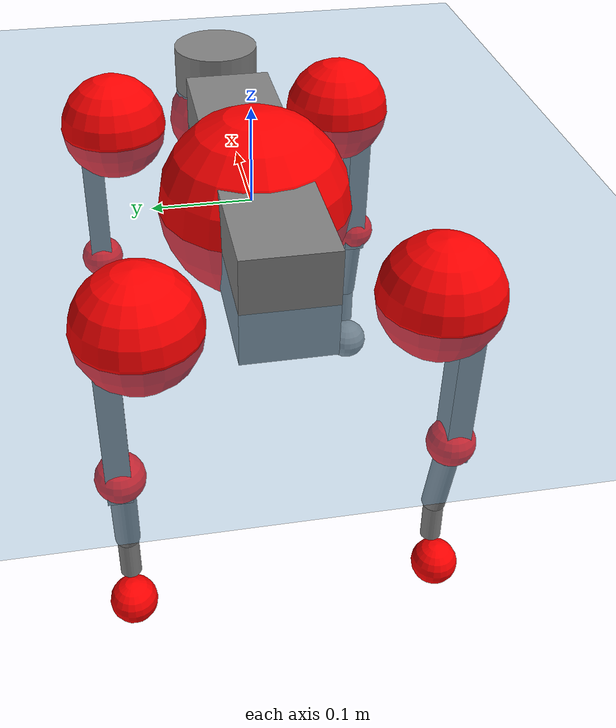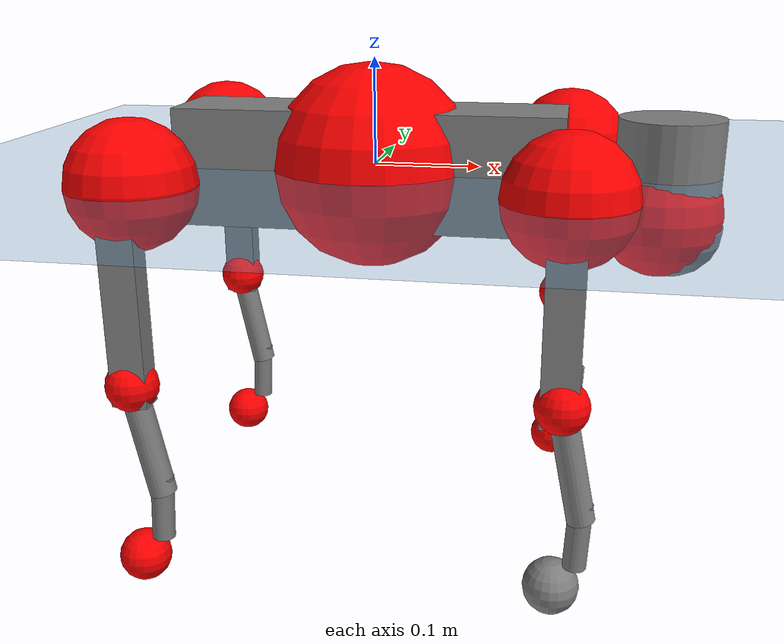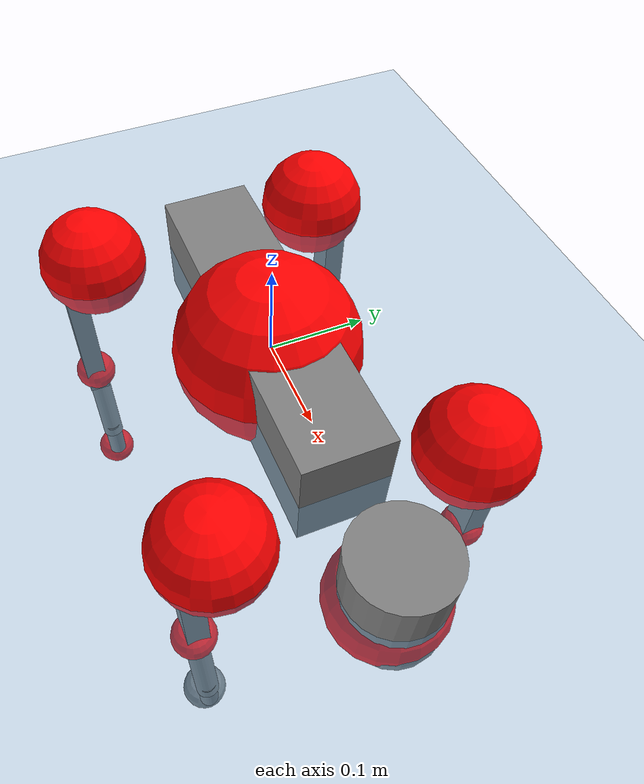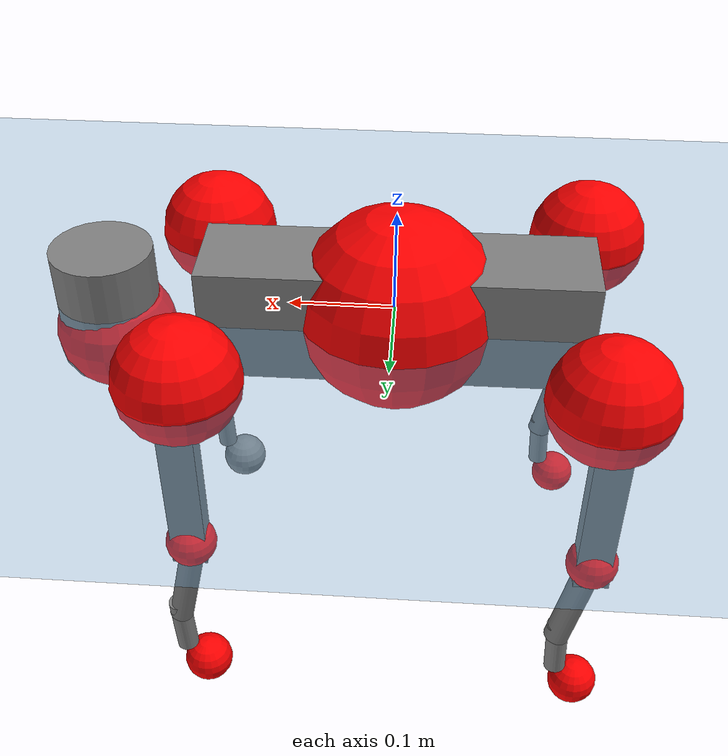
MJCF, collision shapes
<mujoco model="go2">
  <compiler angle="radian" assetdir="assets" balanceinertia="true" inertiafromgeom="false"/>

  <option timestep="0.005" density="1.2" viscosity="2e-05"/>

  <size nkey="1"/>

  <visual>
    <quality shadowsize="8192"/>
    <map shadowclip="0.5"/>
  </visual>

  <default>
    <default class="/">
      <geom contype="0" conaffinity="0" group="1" solref="-1000 -80"/>
      <site size="0.01 0.005 0.005" group="5"/>
      <general forcelimited="true" biastype="affine" gainprm="20" biasprm="0 -20 -0.5"/>
      <default class="go2">
        <joint armature="0.01" damping="0.01" frictionloss="0.2"/>
        <geom condim="1" margin="0.001"/>
        <default class="visual">
          <geom type="mesh" group="2"/>
        </default>
        <default class="collision">
          <geom group="3"/>
          <default class="foot">
            <geom size="0.022 0 0" condim="6" priority="1" friction="0.8 0.02 0.01" solimp="0.015 1 0.022"/>
          </default>
        </default>
        <default class="reward_collision_sphere">
          <geom group="5" rgba="1 0 0 1"/>
        </default>
      </default>
    </default>
  </default>

  <asset>
    <texture type="skybox" colorspace="auto" name="//unnamed_texture_0" builtin="gradient" rgb1="0.95 0.95 0.95" rgb2="0.95 0.95 0.95" width="100" height="600"/>
    <texture type="2d" colorspace="auto" name="texplane" builtin="checker" rgb1="0.345 0.575 0.748" rgb2="0.345 0.575 0.748" markrgb="1 1 1" width="512" height="512"/>
    <material name="MatPlane" class="/" texture="texplane" texuniform="true" texrepeat="2 2" specular="0.9"/>
    <material name="metal" class="/" rgba="0.9 0.95 0.95 1"/>
    <material name="black" class="/" rgba="0 0 0 1"/>
    <material name="white" class="/"/>
    <material name="gray" class="/" rgba="0.671705 0.692426 0.77427 1"/>
    <mesh name="base_0" class="/" file="base_0.obj"/>
    <mesh name="base_1" class="/" file="base_1.obj"/>
    <mesh name="base_2" class="/" file="base_2.obj"/>
    <mesh name="base_3" class="/" file="base_3.obj"/>
    <mesh name="base_4" class="/" file="base_4.obj"/>
    <mesh name="hip_0" class="/" file="hip_0.obj"/>
    <mesh name="hip_1" class="/" file="hip_1.obj"/>
    <mesh name="thigh_0" class="/" file="thigh_0.obj"/>
    <mesh name="thigh_1" class="/" file="thigh_1.obj"/>
    <mesh name="thigh_mirror_0" class="/" file="thigh_mirror_0.obj"/>
    <mesh name="thigh_mirror_1" class="/" file="thigh_mirror_1.obj"/>
    <mesh name="calf_0" class="/" file="calf_0.obj"/>
    <mesh name="calf_1" class="/" file="calf_1.obj"/>
    <mesh name="calf_mirror_0" class="/" file="calf_mirror_0.obj"/>
    <mesh name="calf_mirror_1" class="/" file="calf_mirror_1.obj"/>
    <mesh name="foot" class="/" file="foot.obj"/>
  </asset>

  <worldbody>
    <geom name="floor" class="/" size="100 100 0.125" type="plane" group="0" material="MatPlane"/>
    <light name="toplight_shadow" class="/" pos="0 0 5" dir="0.0990148 0.0990148 -0.990148" type="directional" ambient="0.04 0.04 0.04" diffuse="0.55 0.55 0.55" specular="0.12 0.12 0.12"/>
    <light name="toplight_fill" class="/" pos="0 0 5" dir="0.0990148 0.0990148 -0.990148" type="directional" castshadow="false" ambient="0.04 0.04 0.04" diffuse="0.3 0.3 0.3" specular="0.08 0.08 0.08"/>
    <body name="trunk" childclass="go2" pos="-0.00238697 -0.00266238 -0.000759951" quat="0.999999 5.63805e-05 0.000704193 0.00121962">
      <inertial pos="0.0182389 0.000413335 -0.00490611" quat="-0.00208295 0.714043 -0.00462823 0.700084" mass="6.32402" diaginertia="0.0924828 0.175237 0.00937831"/>
      <joint name="//unnamed_joint_0" type="free" armature="0" damping="0" frictionloss="0"/>
      <geom name="//unnamed_geom_1" class="visual" material="black" mesh="base_0"/>
      <geom name="//unnamed_geom_2" class="visual" material="black" mesh="base_1"/>
      <geom name="//unnamed_geom_3" class="visual" material="black" mesh="base_2"/>
      <geom name="//unnamed_geom_4" class="visual" material="white" mesh="base_3"/>
      <geom name="//unnamed_geom_5" class="visual" material="gray" mesh="base_4"/>
      <geom name="trunk_1" class="collision" size="0.183052 0.0454954 0.0554703" type="box"/>
      <geom name="trunk_2" class="collision" size="0.0486581 0.0437923" pos="0.276987 0 0.00821187" type="cylinder"/>
      <geom name="trunk_3" class="collision" size="0.0457387" pos="0.284762 0 -0.0492712"/>
      <geom name="//unnamed_geom_9" class="reward_collision_sphere" size="0.0973163"/>
      <geom name="//unnamed_geom_10" class="reward_collision_sphere" size="0.0583898" pos="0.272127 0 -0.0369534"/>
      <site name="imu" pos="-0.0229785 0.00250144 0.0365508" size="0.00973163"/>
      <camera name="track" pos="0 -2.25284 0" quat="0.707107 0.707107 0 0" mode="trackcom"/>
      <camera name="ego_camera" pos="0.303227 0 0.0369534" quat="-0.5 -0.5 0.5 0.5"/>
      <body name="FL_hip" pos="0.185336 0.0502306 0.00321594" quat="0.999999 -0.000925844 -0.000237981 0.00053947">
        <inertial pos="-0.00737118 0.000781098 -0.00208789" quat="0.496734 0.499044 0.506134 0.498036" mass="0.654724" diaginertia="0.000803467 0.00108221 0.000189937"/>
        <joint name="FL_hip_joint" pos="0 0 0" axis="0.999974 -0.00637137 0.00333735" range="-1.042 0.993119" armature="0.0110984" damping="0" frictionloss="0.20482"/>
        <geom name="//unnamed_geom_11" class="visual" material="metal" mesh="hip_0"/>
        <geom name="//unnamed_geom_12" class="visual" material="gray" mesh="hip_1"/>
        <geom name="//unnamed_geom_13" class="collision" size="0.0447655 0.0194633" pos="0 0.0901135 0" quat="0.707107 0.707107 0 0" type="cylinder"/>
        <geom name="//unnamed_geom_14" class="reward_collision_sphere" size="0.0583898" pos="0 0.0788493 0"/>
        <body name="FL_thigh" pos="-0.000811834 0.107174 0.0030583" quat="1 1.07026e-05 1.56983e-05 1.45218e-05">
          <inertial pos="-0.00130133 -0.0259257 -0.0241404" quat="0.830727 0.0843597 -0.0202808 0.549877" mass="1.07206" diaginertia="0.00522156 0.0105692 0.000326256"/>
          <joint name="FL_thigh_joint" pos="0 0 0" axis="-0.0115293 0.999915 0.00608407" stiffness="0.00820636" range="-1.62389 3.5475" armature="0.0111387" damping="0" frictionloss="0.21038"/>
          <geom name="//unnamed_geom_15" class="visual" material="metal" mesh="thigh_0"/>
          <geom name="//unnamed_geom_16" class="visual" material="gray" mesh="thigh_1"/>
          <geom name="//unnamed_geom_17" class="collision" size="0.103642 0.0119212 0.0165438" pos="0 0 -0.0874564" quat="0.707107 0 0.707107 0" type="box"/>
          <body name="FL_calf" pos="-0.000248671 -0.000717309 -0.174778" quat="0.999999 -0.000434477 -4.8748e-05 -0.00108654">
            <inertial pos="0.00831929 0.00144474 -0.11871" quat="0.707977 0.0127213 -0.0114144 0.706028" mass="0.221247" diaginertia="0.00128732 0.00270567 1.91762e-05"/>
            <joint name="FL_calf_joint" pos="0 0 0" axis="0.000180046 1 0.000551016" stiffness="0.000270294" range="-2.70287 -0.893474" armature="0.0086727" damping="0.00424868" frictionloss="0.205085"/>
            <geom name="//unnamed_geom_18" class="visual" material="gray" mesh="calf_0"/>
            <geom name="//unnamed_geom_19" class="visual" material="black" mesh="calf_1"/>
            <geom name="FL_calf0" class="collision" size="0.011678 0.0583898" pos="0.00777506 0 -0.0492712" quat="0.994493 0 -0.104807 0" type="cylinder"/>
            <geom name="//unnamed_geom_21" class="collision" size="0.0107048 0.0316278" pos="0.0194377 0 -0.121536" quat="0.999688 0 0.0249974 0" type="cylinder"/>
            <geom name="//unnamed_geom_22" class="visual" pos="0 0 -0.174913" quat="1 0 0 0" material="black" mesh="foot"/>
            <geom name="FL_foot" class="foot" size="0.0183685" pos="-0.00194377 0 -0.174913"/>
            <geom name="//unnamed_geom_24" class="reward_collision_sphere" size="0.0243291"/>
            <geom name="//unnamed_geom_25" class="reward_collision_sphere" size="0.0243291" pos="-0.00194377 0 -0.174913"/>
            <site name="FL_foot" class="foot" pos="-0.00194377 0 -0.174913" size="0.00973163"/>
          </body>
        </body>
      </body>
      <body name="FR_hip" pos="0.189234 -0.0497243 0.0010189" quat="1 -0.000125115 -0.000121053 -0.000233279">
        <inertial pos="-0.00232252 -0.00261642 -4.01313e-05" quat="0.49821 0.505463 0.499241 0.497044" mass="0.658303" diaginertia="0.000802504 0.0011281 0.000179567"/>
        <joint name="FR_hip_joint" pos="0 0 0" axis="0.999999 -0.00144144 -0.0008029" range="-1.00712 1.04791" armature="0.00869296" damping="0.012165" frictionloss="0.217365"/>
        <geom name="//unnamed_geom_26" class="visual" pos="0 2.65906e-09 1.14052e-07" quat="4.63268e-05 1 0 0" material="metal" mesh="hip_0"/>
        <geom name="//unnamed_geom_27" class="visual" pos="0 4.31065e-09 -2.82095e-07" quat="4.63268e-05 1 0 0" material="gray" mesh="hip_1"/>
        <geom name="//unnamed_geom_28" class="collision" size="0.0447655 0.0194633" pos="0 -0.0901135 0" quat="0.707107 0.707107 0 0" type="cylinder"/>
        <geom name="//unnamed_geom_29" class="reward_collision_sphere" size="0.0583898" pos="0 -0.0788493 0"/>
        <body name="FR_thigh" pos="0.000465635 -0.106691 0.00304863" quat="0.999999 -0.000291883 -0.00130731 0.000200162">
          <inertial pos="-0.00618259 0.0230546 -0.0265663" quat="0.55021 -0.0214668 0.0800784 0.8309" mass="1.02862" diaginertia="0.00515262 0.0103754 0.000314662"/>
          <joint name="FR_thigh_joint" pos="0 0 0" axis="-0.000143871 -0.999977 -0.00671266" stiffness="0.00329023" range="-3.48804 1.55277" armature="0.00978253" damping="0.0186371" frictionloss="0.20538"/>
          <geom name="//unnamed_geom_30" class="visual" material="metal" mesh="thigh_mirror_0"/>
          <geom name="//unnamed_geom_31" class="visual" material="gray" mesh="thigh_mirror_1"/>
          <geom name="//unnamed_geom_32" class="collision" size="0.103642 0.0119212 0.0165438" pos="0 0 -0.0874564" quat="0.707107 0 0.707107 0" type="box"/>
          <body name="FR_calf" pos="0.00232338 -0.00193999 -0.173362" quat="1 -8.13519e-05 8.40286e-05 -4.25789e-05">
            <inertial pos="0.00795489 0.00119268 -0.116219" quat="0.705575 -0.00110379 0.0043677 0.708621" mass="0.229063" diaginertia="0.00138412 0.00265403 2.05486e-05"/>
            <joint name="FR_calf_joint" pos="0 0 0" axis="-0.00922692 -0.999953 0.00313824" range="0.833005 2.7307" armature="0.00959854" damping="0.0200928" frictionloss="0.189166"/>
            <geom name="//unnamed_geom_33" class="visual" material="gray" mesh="calf_mirror_0"/>
            <geom name="//unnamed_geom_34" class="visual" material="black" mesh="calf_mirror_1"/>
            <geom name="FR_calf0" class="collision" size="0.0126511 0.0583898" pos="0.00971883 0 -0.0492712" quat="0.995004 0 -0.0998334 0" type="cylinder"/>
            <geom name="//unnamed_geom_36" class="collision" size="0.0107048 0.0316278" pos="0.0194377 0 -0.121536" quat="0.999688 0 0.0249974 0" type="cylinder"/>
            <geom name="//unnamed_geom_37" class="visual" pos="0 0 -0.174913" quat="1 0 0 0" material="black" mesh="foot"/>
            <geom name="FR_foot" class="foot" size="0.0254379" pos="-0.00194377 0 -0.174913"/>
            <geom name="//unnamed_geom_39" class="reward_collision_sphere" size="0.0243291"/>
            <geom name="//unnamed_geom_40" class="reward_collision_sphere" size="0.0243291" pos="-0.00194377 0 -0.174913"/>
            <site name="FR_foot" class="foot" pos="-0.00194377 0 -0.174913" size="0.00973163"/>
          </body>
        </body>
      </body>
      <body name="RL_hip" pos="-0.18869 0.0530499 0.00255681" quat="1 -0.000711677 2.63525e-05 0.000352811">
        <inertial pos="0.00792933 0.00351005 -0.00113945" quat="0.504899 0.498526 0.49699 0.499549" mass="0.618352" diaginertia="0.000764385 0.00111695 0.000180194"/>
        <joint name="RL_hip_joint" pos="0 0 0" axis="-0.999826 0.00486663 0.0180233" stiffness="0.0110116" range="-1.02443 1.02439" armature="0.00978569" damping="0.00931472" frictionloss="0.201135"/>
        <geom name="//unnamed_geom_41" class="visual" pos="-1.3128e-09 0 -2.57338e-07" quat="4.63268e-05 0 1 0" material="metal" mesh="hip_0"/>
        <geom name="//unnamed_geom_42" class="visual" pos="-2.1282e-09 0 -2.28222e-07" quat="4.63268e-05 0 1 0" material="gray" mesh="hip_1"/>
        <geom name="//unnamed_geom_43" class="collision" size="0.0447655 0.0194633" pos="0 0.0901135 0" quat="0.707107 0.707107 0 0" type="cylinder"/>
        <geom name="//unnamed_geom_44" class="reward_collision_sphere" size="0.0583898" pos="0 0.0788493 0"/>
        <body name="RL_thigh" pos="-0.002093 0.10877 0.00255999" quat="0.999999 -0.000996603 0.000315577 0.000525447">
          <inertial pos="-0.00392166 -0.0238026 -0.0258834" quat="0.835407 0.0753449 -0.0226583 0.543971" mass="1.02451" diaginertia="0.00514295 0.0102213 0.000329033"/>
          <joint name="RL_thigh_joint" pos="0 0 0" axis="-0.00862375 0.999874 0.0132991" range="-0.501923 4.54803" armature="0.0086092" damping="0" frictionloss="0.191"/>
          <geom name="//unnamed_geom_45" class="visual" material="metal" mesh="thigh_0"/>
          <geom name="//unnamed_geom_46" class="visual" material="gray" mesh="thigh_1"/>
          <geom name="//unnamed_geom_47" class="collision" size="0.103642 0.0119212 0.0165438" pos="0 0 -0.0874564" quat="0.707107 0 0.707107 0" type="box"/>
          <body name="RL_calf" pos="-0.000157406 -0.00209711 -0.172755" quat="1 0.000153778 -0.000187374 0.000116688">
            <inertial pos="0.0060388 -0.00065245 -0.113991" quat="0.710815 0.00238661 -0.00583066 0.703351" mass="0.221849" diaginertia="0.00129673 0.00267203 1.99779e-05"/>
            <joint name="RL_calf_joint" pos="0 0 0" axis="-0.00073986 0.999991 -0.00416485" range="-2.7144 -0.834473" armature="0.00923359" damping="0" frictionloss="0.190776"/>
            <geom name="//unnamed_geom_48" class="visual" material="gray" mesh="calf_0"/>
            <geom name="//unnamed_geom_49" class="visual" material="black" mesh="calf_1"/>
            <geom name="RL_calf0" class="collision" size="0.0126511 0.0583898" pos="0.00971883 0 -0.0492712" quat="0.995004 0 -0.0998334 0" type="cylinder"/>
            <geom name="//unnamed_geom_51" class="collision" size="0.0107048 0.0316278" pos="0.0194377 0 -0.121536" quat="0.999688 0 0.0249974 0" type="cylinder"/>
            <geom name="//unnamed_geom_52" class="visual" pos="0 0 -0.174913" quat="1 0 0 0" material="black" mesh="foot"/>
            <geom name="RL_foot" class="foot" size="0.0214891" pos="-0.00194377 0 -0.174913"/>
            <geom name="//unnamed_geom_54" class="reward_collision_sphere" size="0.0243291"/>
            <geom name="//unnamed_geom_55" class="reward_collision_sphere" size="0.0243291" pos="-0.00194377 0 -0.174913"/>
            <site name="RL_foot" class="foot" pos="-0.00194377 0 -0.174913" size="0.00973163"/>
          </body>
        </body>
      </body>
      <body name="RR_hip" pos="-0.187285 -0.0541571 0.00149714" quat="0.999999 -0.000967093 0.000185142 0.00106551">
        <inertial pos="0.00554014 0.000736777 -0.000600884" quat="0.500275 0.490199 0.50854 0.500816" mass="0.622244" diaginertia="0.000782082 0.00110616 0.000176197"/>
        <joint name="RR_hip_joint" pos="0 0 0" axis="-0.99997 0.00358315 0.0068356" stiffness="0.00798883" range="-1.06829 1.04541" armature="0.0110465" damping="0.0169404" frictionloss="0.167755"/>
        <geom name="//unnamed_geom_56" class="visual" pos="1.31815e-09 2.65906e-09 -3.71391e-07" quat="2.14617e-09 4.63268e-05 4.63268e-05 -1" material="metal" mesh="hip_0"/>
        <geom name="//unnamed_geom_57" class="visual" pos="2.11497e-09 4.31065e-09 5.38728e-08" quat="2.14617e-09 4.63268e-05 4.63268e-05 -1" material="gray" mesh="hip_1"/>
        <geom name="//unnamed_geom_58" class="collision" size="0.0447655 0.0194633" pos="0 -0.0901135 0" quat="0.707107 0.707107 0 0" type="cylinder"/>
        <geom name="//unnamed_geom_59" class="reward_collision_sphere" size="0.0583898" pos="0 -0.0788493 0"/>
        <body name="RR_thigh" pos="-0.00151729 -0.108703 -0.00288924" quat="1 -0.000491204 -0.000407286 -0.000691691">
          <inertial pos="-0.00321417 0.0236951 -0.0269156" quat="0.55146 -0.0202579 0.0844576 0.829668" mass="1.03383" diaginertia="0.0050581 0.0104833 0.000314975"/>
          <joint name="RR_thigh_joint" pos="0 0 0" axis="-0.00337144 -0.999992 -0.00196302" range="-4.58992 0.571464" armature="0.0106607" damping="0.0162957" frictionloss="0.19862"/>
          <geom name="//unnamed_geom_60" class="visual" material="metal" mesh="thigh_mirror_0"/>
          <geom name="//unnamed_geom_61" class="visual" material="gray" mesh="thigh_mirror_1"/>
          <geom name="//unnamed_geom_62" class="collision" size="0.103642 0.0119212 0.0165438" pos="0 0 -0.0874564" quat="0.707107 0 0.707107 0" type="box"/>
          <body name="RR_calf" pos="-0.00183059 0.00197735 -0.174331" quat="1 2.89586e-05 -0.000473833 -0.000560787">
            <inertial pos="0.0078633 0.000612902 -0.114385" quat="0.705297 -0.00724308 0.00215426 0.708872" mass="0.221737" diaginertia="0.00128659 0.00249085 1.98966e-05"/>
            <joint name="RR_calf_joint" pos="0 0 0" axis="-0.0018042 -0.999943 0.0105381" range="0.892501 2.75988" armature="0.0082298" damping="0.00939525" frictionloss="0.190976"/>
            <geom name="//unnamed_geom_63" class="visual" material="gray" mesh="calf_mirror_0"/>
            <geom name="//unnamed_geom_64" class="visual" material="black" mesh="calf_mirror_1"/>
            <geom name="RR_calf0" class="collision" size="0.0126511 0.0583898" pos="0.00971883 0 -0.0492712" quat="0.995004 0 -0.0998334 0" type="cylinder"/>
            <geom name="//unnamed_geom_66" class="collision" size="0.0107048 0.0316278" pos="0.0194377 0 -0.121536" quat="0.999688 0 0.0249974 0" type="cylinder"/>
            <geom name="//unnamed_geom_67" class="visual" pos="0 0 -0.174913" quat="1 0 0 0" material="black" mesh="foot"/>
            <geom name="RR_foot" class="foot" size="0.023201" pos="-0.00194377 0 -0.174913"/>
            <geom name="//unnamed_geom_69" class="reward_collision_sphere" size="0.0243291"/>
            <geom name="//unnamed_geom_70" class="reward_collision_sphere" size="0.0243291" pos="-0.00194377 0 -0.174913"/>
            <site name="RR_foot" class="foot" pos="-0.00194377 0 -0.174913" size="0.00973163"/>
          </body>
        </body>
      </body>
    </body>
  </worldbody>

  <contact>
    <pair class="/" geom1="floor" geom2="FL_foot" name="//unnamed_contact_0"/>
    <pair class="/" geom1="floor" geom2="FR_foot" name="//unnamed_contact_1"/>
    <pair class="/" geom1="floor" geom2="RL_foot" name="//unnamed_contact_2"/>
    <pair class="/" geom1="floor" geom2="RR_foot" name="//unnamed_contact_3"/>
  </contact>

  <actuator>
    <general name="FL_hip" class="/" joint="FL_hip_joint" forcerange="-23.457 23.457" gainprm="19.6241" biasprm="0 -19.6241 -0.489911"/>
    <general name="FL_thigh" class="/" joint="FL_thigh_joint" forcerange="-21.5451 21.5451" gainprm="19.6241" biasprm="0 -19.6241 -0.489911"/>
    <general name="FL_calf" class="/" joint="FL_calf_joint" forcerange="-43.4881 43.4881" gainprm="19.6241" biasprm="0 -19.6241 -0.489911"/>
    <general name="FR_hip" class="/" joint="FR_hip_joint" forcerange="-24.7434 24.7434" gainprm="19.6241" biasprm="0 -19.6241 -0.489911"/>
    <general name="FR_thigh" class="/" joint="FR_thigh_joint" forcerange="-23.2726 23.2726" gainprm="19.6241" biasprm="0 -19.6241 -0.489911"/>
    <general name="FR_calf" class="/" joint="FR_calf_joint" forcerange="-39.3323 39.3323" gainprm="19.6241" biasprm="0 -19.6241 -0.489911"/>
    <general name="RL_hip" class="/" joint="RL_hip_joint" forcerange="-23.8448 23.8448" gainprm="19.6241" biasprm="0 -19.6241 -0.489911"/>
    <general name="RL_thigh" class="/" joint="RL_thigh_joint" forcerange="-23.8001 23.8001" gainprm="19.6241" biasprm="0 -19.6241 -0.489911"/>
    <general name="RL_calf" class="/" joint="RL_calf_joint" forcerange="-42.2729 42.2729" gainprm="19.6241" biasprm="0 -19.6241 -0.489911"/>
    <general name="RR_hip" class="/" joint="RR_hip_joint" forcerange="-22.1894 22.1894" gainprm="19.6241" biasprm="0 -19.6241 -0.489911"/>
    <general name="RR_thigh" class="/" joint="RR_thigh_joint" forcerange="-23.0894 23.0894" gainprm="19.6241" biasprm="0 -19.6241 -0.489911"/>
    <general name="RR_calf" class="/" joint="RR_calf_joint" forcerange="-48.5927 48.5927" gainprm="19.6241" biasprm="0 -19.6241 -0.489911"/>
  </actuator>

  <sensor>
    <gyro site="imu" name="imu_angular_velocity"/>
    <velocimeter site="imu" name="imu_linear_velocity"/>
    <framelinvel objtype="site" objname="FL_foot" name="FL_foot_global_linear_velocity"/>
    <framelinvel objtype="site" objname="FR_foot" name="FR_foot_global_linear_velocity"/>
    <framelinvel objtype="site" objname="RL_foot" name="RL_foot_global_linear_velocity"/>
    <framelinvel objtype="site" objname="RR_foot" name="RR_foot_global_linear_velocity"/>
  </sensor>

  <keyframe>
    <key name="home" qpos="0 0 0.325 1 0 0 0 0.1 0.8 -1.5 -0.1 -0.8 1.5 -0.1 0.8 -1.5 0.1 -0.8 1.5"/>
  </keyframe>
</mujoco>
